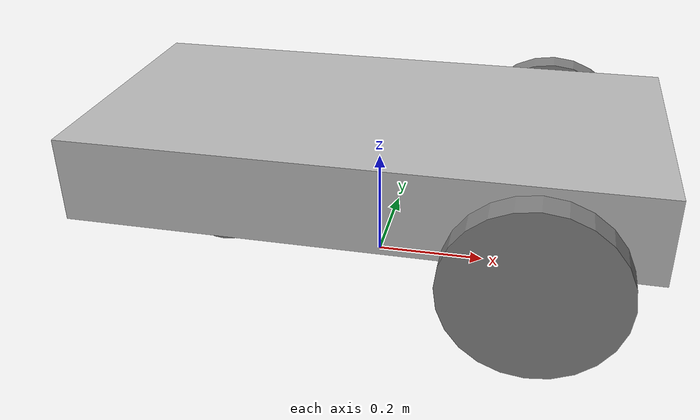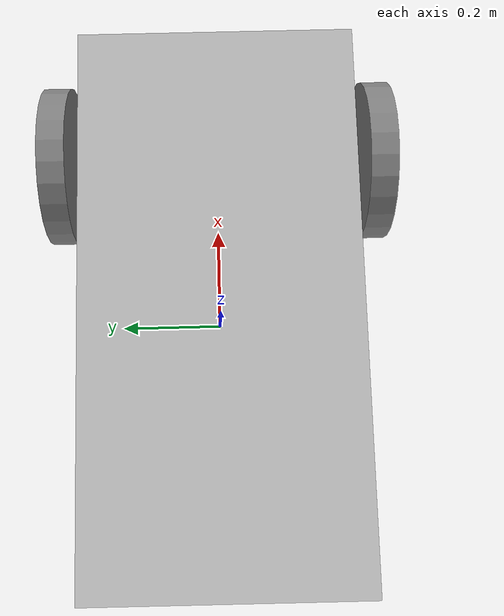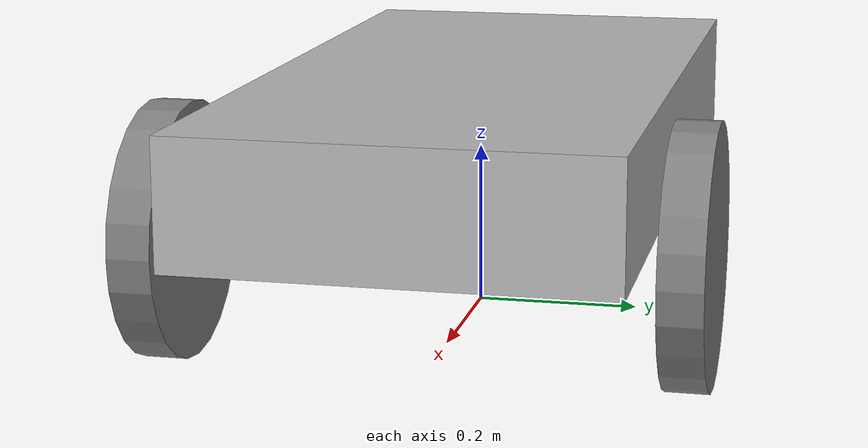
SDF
<?xml version="1.0" ?>
<sdf version="1.6">
  <model name='Dolly'>
    <pose>0 0 0.225 0 -0 0</pose>
    <link name='chassis'>
      <inertial>
        <mass>1.0</mass>
        <inertia>
          <ixx>0.0227</ixx>
          <ixy>0</ixy>
          <ixz>0</ixz>
          <iyy>0.0852</iyy>
          <iyz>0</iyz>
          <izz>0.1041</izz>
        </inertia>
      </inertial>
      <visual name='visual'>
        <geometry>
          <box>
            <size>1.0 0.5 0.15</size>
          </box>
        </geometry>
        <material>
          <script>
            <uri>model://dolly/materials/scripts</uri>
            <uri>model://dolly/materials/textures</uri>
            <name>Dolly/fur</name>
          </script>
        </material>
      </visual>
      <sensor name="sensor_ray" type="gpu_ray">
        <pose>0.5 0 0 0 0 0</pose>
        <ray>
          <scan>
            <horizontal>
              <samples>200</samples>
              <resolution>0.5</resolution>
             <min_angle>-0.5</min_angle>
             <max_angle>0.5</max_angle>
            </horizontal>
            <vertical>
              <samples>200</samples>
              <resolution>0.5</resolution>
             <min_angle>-0.5</min_angle>
             <max_angle>0.5</max_angle>
            </vertical>
          </scan>
          <range>
            <min>0.05</min>
        <max>5</max>
        <resolution>0.02</resolution>
          </range>
        </ray>
        <always_on>true</always_on>
        <visualize>true</visualize>
        <update_rate>100.0</update_rate>
        <plugin name="laser" filename="libgazebo_ros_ray_sensor.so">
          <ros>
            <namespace>/dolly</namespace>
            <remapping>~/out:=pointcloud</remapping>
          </ros>
          <output_type>sensor_msgs/PointCloud2</output_type>
        </plugin>
      </sensor>
    </link>

    <link name='caster'>
      <pose>-0.3 0 -0.125 0 0 0</pose>
      <inertial>
        <mass>0.0415553</mass>
        <inertia>
          <ixx>7.97741e-05</ixx>
          <ixy>0</ixy>
          <ixz>0</ixz>
          <iyy>7.97741e-05</iyy>
          <iyz>0</iyz>
          <izz>7.97741e-05</izz>
        </inertia>
      </inertial>
      <visual name='visual'>
        <geometry>
          <sphere>
            <radius>0.1</radius>
          </sphere>
        </geometry>
        <material>
          <diffuse>0.5 0.5 0.5 1</diffuse>
          <ambient>0 0 0 1</ambient>
          <specular>1 1 1 1</specular>
          <emissive>0 0 0 1</emissive>
        </material>
      </visual>
      <collision name='collision'>
        <geometry>
          <sphere>
            <radius>0.1</radius>
          </sphere>
        </geometry>
        <surface>
          <friction>
            <ode>
              <mu>1</mu>
              <mu2>1</mu2>
              <slip1>0</slip1>
              <slip2>0</slip2>
            </ode>
          </friction>
          <contact>
            <ode>
              <soft_cfm>0</soft_cfm>
              <soft_erp>0.2</soft_erp>
              <kp>1e+13</kp>
              <kd>1</kd>
              <max_vel>0.01</max_vel>
              <min_depth>0</min_depth>
            </ode>
          </contact>
        </surface>
      </collision>
    </link>

    <link name='left_wheel'>
      <pose>0.3 0.3 -0.075 -1.5707 0 0</pose>
      <inertial>
        <mass>0.5</mass>
        <inertia>
          <ixx>0.0029</ixx>
          <ixy>0</ixy>
          <ixz>0</ixz>
          <iyy>0.0029</iyy>
          <iyz>0</iyz>
          <izz>0.0056</izz>
        </inertia>
      </inertial>
      <visual name='visual'>
        <geometry>
          <cylinder>
            <radius>0.15</radius>
            <length>0.05</length>
          </cylinder>
        </geometry>
        <material>
          <diffuse>0.5 0.5 0.5 1</diffuse>
          <ambient>0 0 0 1</ambient>
          <specular>1 1 1 1</specular>
          <emissive>0 0 0 1</emissive>
        </material>
      </visual>
      <collision name='collision'>
        <geometry>
          <sphere>
            <radius>0.15</radius>
          </sphere>
        </geometry>
        <surface>
          <friction>
            <ode>
              <mu>1</mu>
              <mu2>1</mu2>
              <slip1>0</slip1>
              <slip2>0</slip2>
            </ode>
          </friction>
          <contact>
            <ode>
              <soft_cfm>0</soft_cfm>
              <soft_erp>0.2</soft_erp>
              <kp>1e+13</kp>
              <kd>1</kd>
              <max_vel>0.01</max_vel>
              <min_depth>0.01</min_depth>
            </ode>
          </contact>
        </surface>
      </collision>
    </link>

    <link name='right_wheel'>
      <pose>0.3 -0.3 -0.075 -1.5707 0 0</pose>
      <inertial>
        <mass>0.5</mass>
        <inertia>
          <ixx>0.0029</ixx>
          <ixy>0</ixy>
          <ixz>0</ixz>
          <iyy>0.0029</iyy>
          <iyz>0</iyz>
          <izz>0.0056</izz>
        </inertia>
      </inertial>
      <visual name='visual'>
        <geometry>
          <cylinder>
            <radius>0.15</radius>
            <length>0.05</length>
          </cylinder>
        </geometry>
        <material>
          <diffuse>0.5 0.5 0.5 1</diffuse>
          <ambient>0 0 0 1</ambient>
          <specular>1 1 1 1</specular>
          <emissive>0 0 0 1</emissive>
        </material>
      </visual>
      <collision name='collision'>
        <geometry>
          <sphere>
            <radius>0.15</radius>
          </sphere>
        </geometry>
        <surface>
          <friction>
            <ode>
              <mu>1</mu>
              <mu2>1</mu2>
              <slip1>0</slip1>
              <slip2>0</slip2>
            </ode>
          </friction>
          <contact>
            <ode>
              <soft_cfm>0</soft_cfm>
              <soft_erp>0.2</soft_erp>
              <kp>1e+13</kp>
              <kd>1</kd>
              <max_vel>0.01</max_vel>
              <min_depth>0.01</min_depth>
            </ode>
          </contact>
        </surface>
      </collision>
    </link>

    <link name="cam">
      <inertial>
        <mass>0.0615752</mass>
        <inertia>
          <ixx>9.108e-05</ixx>
          <ixy>0</ixy>
          <ixz>0</ixz>
          <iyy>2.51e-06</iyy>
          <iyz>0</iyz>
          <izz>8.931e-05</izz>
        </inertia>
        <pose frame=''>0 0 0 0 -0 0</pose>
      </inertial>
      <self_collide>0</self_collide>
      <enable_wind>0</enable_wind>
      <kinematic>0</kinematic>
      <gravity>1</gravity>
      <collision name='collision'>
        <laser_retro>0</laser_retro>
        <max_contacts>10</max_contacts>
        <pose frame=''>0 0 0 0 -0 0</pose>
        <geometry>
          <box>
            <size>0.0078 0.130 0.0192</size>
          </box>
        </geometry>
        <surface>
          <friction>
            <ode>
              <mu>1</mu>
              <mu2>1</mu2>
              <fdir1>0 0 0</fdir1>
              <slip1>0</slip1>
              <slip2>0</slip2>
            </ode>
            <torsional>
              <coefficient>1</coefficient>
              <patch_radius>0</patch_radius>
              <surface_radius>0</surface_radius>
              <use_patch_radius>1</use_patch_radius>
              <ode>
                <slip>0</slip>
              </ode>
            </torsional>
          </friction>
          <bounce>
            <restitution_coefficient>0</restitution_coefficient>
            <threshold>1e+06</threshold>
          </bounce>
          <contact>
            <collide_without_contact>0</collide_without_contact>
            <collide_without_contact_bitmask>1</collide_without_contact_bitmask>
            <collide_bitmask>1</collide_bitmask>
            <ode>
              <soft_cfm>0</soft_cfm>
              <soft_erp>0.2</soft_erp>
              <kp>1e+13</kp>
              <kd>1</kd>
              <max_vel>0.01</max_vel>
              <min_depth>0</min_depth>
            </ode>
            <bullet>
              <split_impulse>1</split_impulse>
              <split_impulse_penetration_threshold>-0.01</split_impulse_penetration_threshold>
              <soft_cfm>0</soft_cfm>
              <soft_erp>0.2</soft_erp>
              <kp>1e+13</kp>
              <kd>1</kd>
            </bullet>
          </contact>
        </surface>
      </collision>
      <sensor name="color" type="camera">
        <pose frame="">0 -0.046 0.004 0 0 0</pose>
        <camera name="__default__">
          <horizontal_fov>1.047</horizontal_fov>
          <image>
            <width>640</width>
            <height>480</height>
            <format>RGB_INT8</format>
          </image>
          <clip>
            <near>0.1</near>
            <far>100</far>
          </clip>
          <noise>
            <type>gaussian</type>
            <mean>0.0</mean>
            <stddev>0.007</stddev>
          </noise>
        </camera>
        <always_on>1</always_on>
        <update_rate>60</update_rate>
        <visualize>1</visualize>
      </sensor>
      <sensor name="ired1" type="camera">
        <pose frame="">0 -0.06 0.004 0 0 0</pose>
        <camera name="__default__">
          <horizontal_fov>1.047</horizontal_fov>
          <image>
            <width>640</width>
            <height>480</height>
            <format>L_INT8</format>
          </image>
          <clip>
            <near>0.1</near>
            <far>100</far>
          </clip>
          <noise>
            <type>gaussian</type>
            <mean>0.0</mean>
            <stddev>0.007</stddev>
          </noise>
        </camera>
        <always_on>1</always_on>
        <update_rate>60</update_rate>
        <visualize>0</visualize>
      </sensor>
      <sensor name="ired2" type="camera">
        <pose frame="">0 0.01 0.004 0 0 0</pose>
        <camera name="__default__">
          <horizontal_fov>1.047</horizontal_fov>
          <image>
            <width>640</width>
            <height>480</height>
            <format>L_INT8</format>
          </image>
          <clip>
            <near>0.1</near>
            <far>100</far>
          </clip>
          <noise>
            <type>gaussian</type>
            <mean>0.0</mean>
            <stddev>0.007</stddev>
          </noise>
        </camera>
        <always_on>1</always_on>
        <update_rate>60</update_rate>
        <visualize>0</visualize>
      </sensor>
      <sensor name="depth" type="depth">
        <pose frame="">0 -0.03 0.004 0 0 0</pose>
        <camera name="__default__">
          <horizontal_fov>1.047</horizontal_fov>
          <image>
            <width>640</width>
            <height>480</height>
          </image>
          <clip>
            <near>0.1</near>
            <far>100</far>
          </clip>
          <noise>
            <type>gaussian</type>
            <mean>0.0</mean>
            <stddev>0.007</stddev>
          </noise>
        </camera>
        <plugin name="intel_realsense_d430_depth_driver" filename="libgazebo_ros_camera.so">
           <ros>
              <namespace>custom_ns</namespace>
              <argument>image_raw:=custom_img</argument>
              <argument>camera_info:=custom_info</argument>
              <argument>depth/image_raw:=depth/image_rect_raw</argument>
            </ros>
            <camera_name>tai</camera_name>
            <frame_name>tai_link_optical</frame_name>
            <hack_baseline>0.07</hack_baseline>
            <min_depth>0.05</min_depth>
            <max_depth>8.0</max_depth>
        </plugin>
        <always_on>1</always_on>
        <update_rate>60</update_rate>
        <visualize>0</visualize>
      </sensor>
    </link>

    <joint name='left_wheel_joint' type='revolute'>
      <parent>chassis</parent>
      <child>left_wheel</child>
      <axis>
        <xyz>0 0 1</xyz>
        <limit>
          <lower>-1.79769e+308</lower>
          <upper>1.79769e+308</upper>
        </limit>
      </axis>
    </joint>

    <joint name='right_wheel_joint' type='revolute'>
      <parent>chassis</parent>
      <child>right_wheel</child>
      <axis>
        <xyz>0 0 1</xyz>
        <limit>
          <lower>-1.79769e+308</lower>
          <upper>1.79769e+308</upper>
        </limit>
      </axis>
    </joint>

    <joint name='caster_wheel' type='ball'>
      <parent>chassis</parent>
      <child>caster</child>
    </joint>
        <joint name='cam_link' type='ball'>
      <parent>chassis</parent>
      <child>cam</child>
    </joint>

    <plugin name='diff_drive' filename='libgazebo_ros_diff_drive.so'>

      <ros>
        <namespace>/dolly</namespace>
      </ros>

      <!-- wheels -->
      <left_joint>left_wheel_joint</left_joint>
      <right_joint>right_wheel_joint</right_joint>

      <!-- kinematics -->
      <wheel_separation>1.25</wheel_separation>
      <wheel_diameter>0.3</wheel_diameter>

      <!-- limits -->
      <max_wheel_torque>20</max_wheel_torque>
      <max_wheel_acceleration>1.0</max_wheel_acceleration>

      <!-- output -->
      <publish_odom>true</publish_odom>
      <publish_odom_tf>true</publish_odom_tf>

      <odometry_frame>odom_demo</odometry_frame>
      <robot_base_frame>chassis</robot_base_frame>

    </plugin>

    <plugin name="realsense_plugin" filename="libRealSensePlugin.so"/>

  </model>
</sdf>
